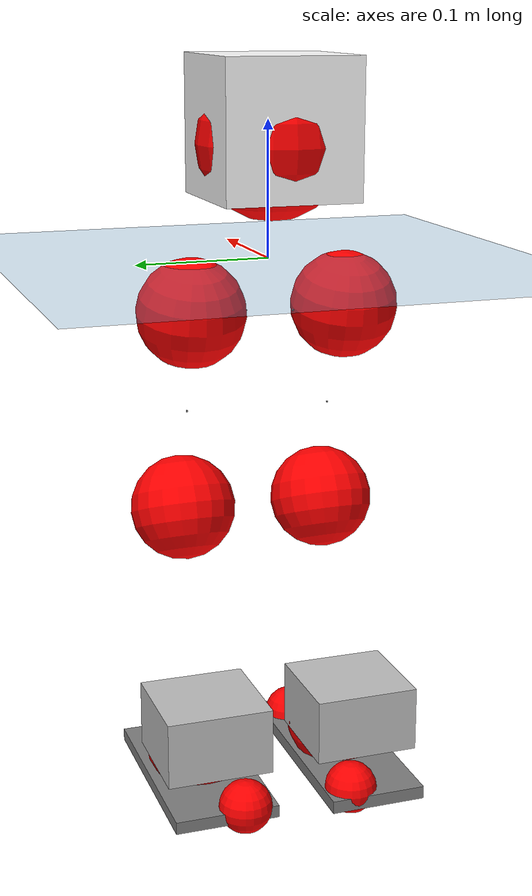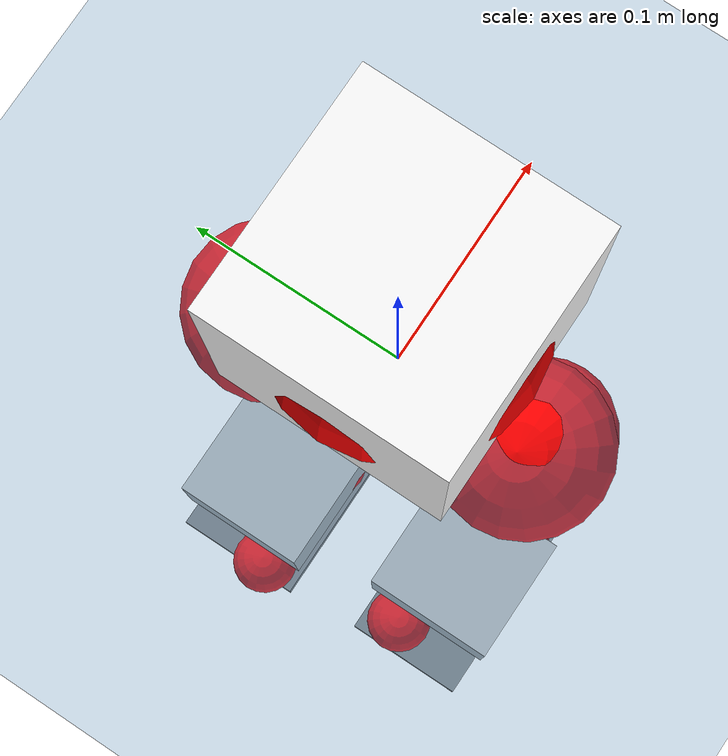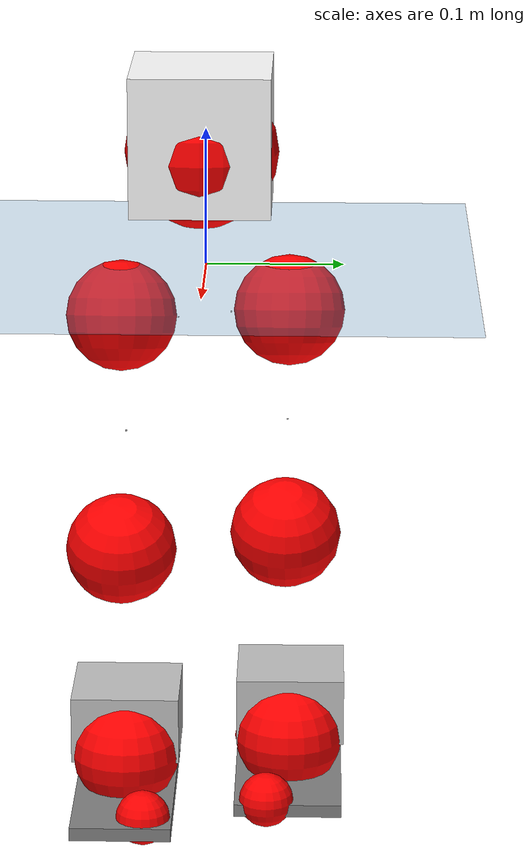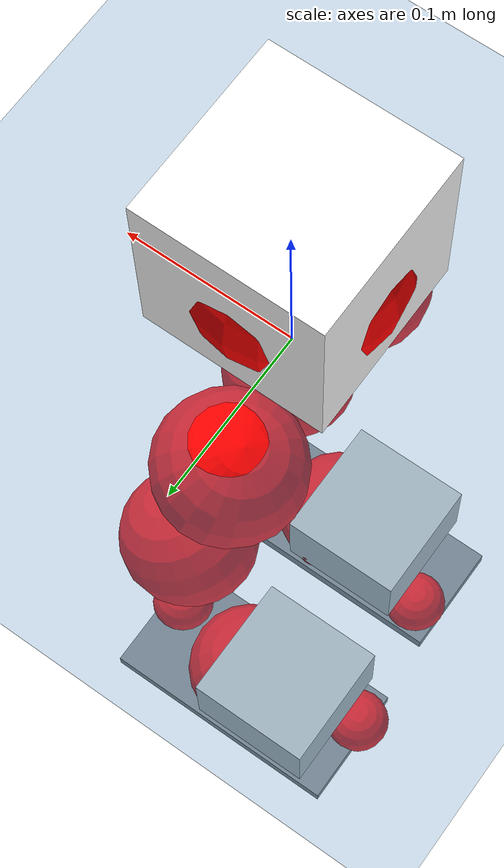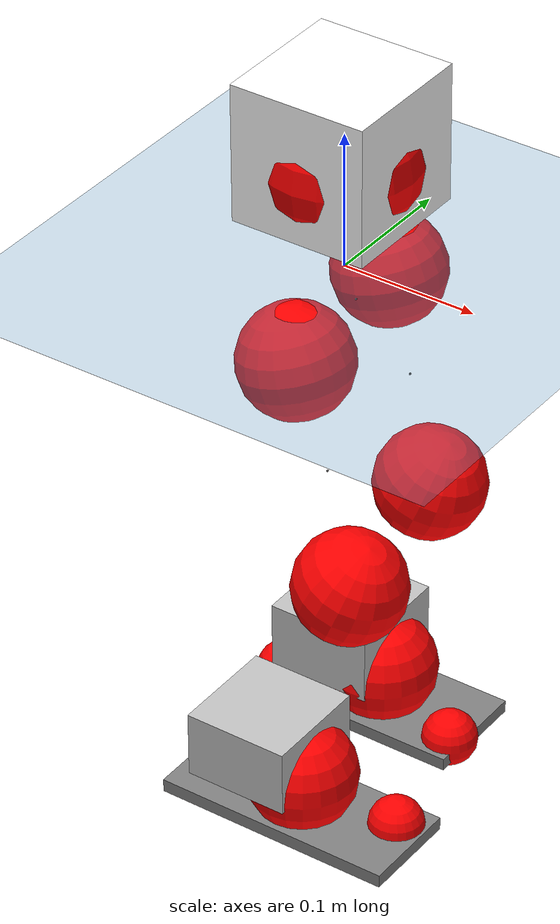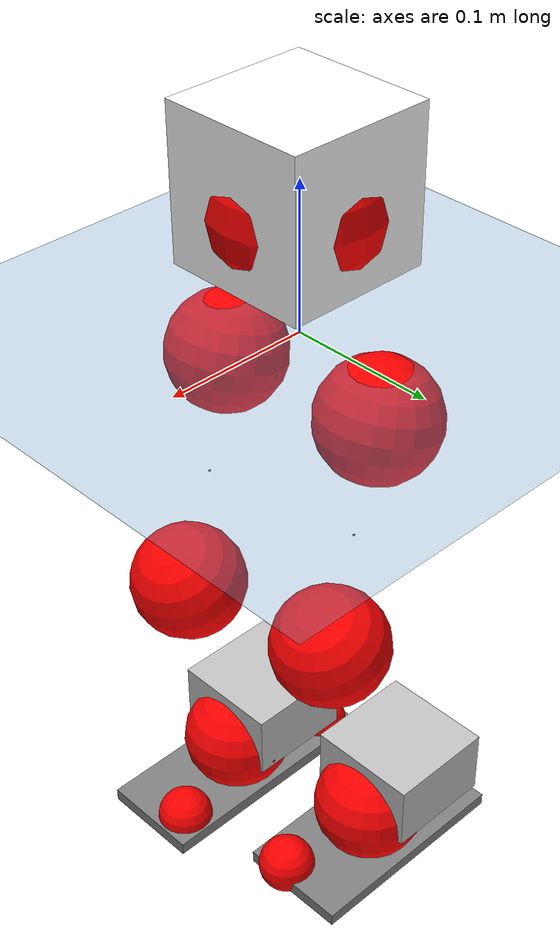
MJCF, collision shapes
<mujoco model="pi_12dof_release_v1">
  <compiler angle="radian" assetdir="assets" balanceinertia="true" inertiafromgeom="false"/>

  <option timestep="0.005" density="1.2" viscosity="2e-05"/>

  <size nkey="1"/>

  <visual>
    <quality shadowsize="8192"/>
    <map shadowclip="0.5"/>
  </visual>

  <default>
    <default class="/">
      <joint armature="0.01" damping="0.01" frictionloss="0.01"/>
      <geom contype="0" conaffinity="0" group="1" solref="-1000 -80"/>
      <site size="0.01 0.005 0.005" group="5"/>
      <general forcelimited="true" biastype="affine" gainprm="20" biasprm="0 -20 -0.5"/>
      <default class="foot">
        <geom size="0.0845 0.036 0.005" type="box" condim="6" group="4" priority="1" friction="0.9 0.2 0.2" solimp="0.015 1 0.005"/>
      </default>
      <default class="reward_collision_sphere">
        <geom group="5" rgba="1 0 0 1"/>
      </default>
    </default>
  </default>

  <asset>
    <texture type="skybox" colorspace="auto" name="//unnamed_texture_0" builtin="gradient" rgb1="0.95 0.95 0.95" rgb2="0.95 0.95 0.95" width="100" height="600"/>
    <texture type="2d" colorspace="auto" name="texplane" builtin="checker" rgb1="0.345 0.575 0.748" rgb2="0.345 0.575 0.748" markrgb="1 1 1" width="512" height="512"/>
    <material name="MatPlane" class="/" texture="texplane" texuniform="true" texrepeat="2 2" specular="0.9"/>
    <mesh name="baselink_1" class="/" file="baselink_1.STL"/>
    <mesh name="r_hip_pitch_link" class="/" file="r_hip_pitch_link.STL"/>
    <mesh name="r_hip_roll_link" class="/" file="r_hip_roll_link.STL"/>
    <mesh name="r_thigh_link" class="/" file="r_thigh_link.STL"/>
    <mesh name="r_calf_link" class="/" file="r_calf_link.STL"/>
    <mesh name="r_ankle_pitch_link" class="/" file="r_ankle_pitch_link.STL"/>
    <mesh name="r_ankle_roll_link" class="/" file="r_ankle_roll_link.STL"/>
    <mesh name="l_hip_pitch_link" class="/" file="l_hip_pitch_link.STL"/>
    <mesh name="l_hip_roll_link" class="/" file="l_hip_roll_link.STL"/>
    <mesh name="l_thigh_link" class="/" file="l_thigh_link.STL"/>
    <mesh name="l_calf_link" class="/" file="l_calf_link.STL"/>
    <mesh name="l_ankle_pitch_link" class="/" file="l_ankle_pitch_link.STL"/>
    <mesh name="l_ankle_roll_link" class="/" file="l_ankle_roll_link.STL"/>
  </asset>

  <worldbody>
    <geom name="floor" class="/" size="100 100 0.125" type="plane" group="0" material="MatPlane"/>
    <light name="toplight_shadow" class="/" pos="0 0 5" dir="0.0990148 0.0990148 -0.990148" type="directional" ambient="0.04 0.04 0.04" diffuse="0.55 0.55 0.55" specular="0.12 0.12 0.12"/>
    <light name="toplight_fill" class="/" pos="0 0 5" dir="0.0990148 0.0990148 -0.990148" type="directional" castshadow="false" ambient="0.04 0.04 0.04" diffuse="0.3 0.3 0.3" specular="0.08 0.08 0.08"/>
    <body name="trunk" pos="-0.000442841 -0.00275119 -0.000560648" quat="0.999999 0.00118196 -0.000224488 -0.000676332">
      <inertial pos="0.000142202 -0.00224685 0.0511478" quat="0.693625 0.0203009 0.014277 0.719909" mass="2.25679" diaginertia="0.0115614 0.00283502 0.0101942"/>
      <joint name="//unnamed_joint_0" type="free"/>
      <geom name="//unnamed_geom_1" class="/" type="mesh" density="0" rgba="1 1 1 1" mesh="baselink_1"/>
      <geom name="//unnamed_geom_2" class="/" size="0.0506172 0.0506172 0.0506172" pos="0 0 0.095571" type="box" rgba="1 1 1 1"/>
      <geom name="//unnamed_geom_3" class="reward_collision_sphere" size="0.0556789" pos="0 0 0.0836247"/>
      <site name="imu" class="/" pos="0.00514409 -0.00304267 -0.00298126" size="0.0101234"/>
      <camera name="track" class="/" pos="0 -1.59572 0" quat="0.707107 0.707107 0 0" mode="trackcom"/>
      <camera name="ego_camera" class="/" pos="0.0783397 0 0.215035" quat="-0.5 -0.5 0.5 0.5"/>
      <body name="r_hip_pitch_link" pos="0.00207182 -0.0174381 -0.0394627" quat="0.992174 -0.000203646 -0.124863 0.000386322">
        <inertial pos="0.00133158 -0.0475151 -0.00157443" quat="-0.0236782 0.706084 -0.0329511 0.706964" mass="0.382061" diaginertia="0.000135317 3.07592e-05 0.000201865"/>
        <joint name="r_hip_pitch_joint" class="/" pos="0 0 0" axis="0.00665008 -0.999972 -0.00329832" stiffness="0.00023162" range="-1.6947 1.29582" armature="0.0105315" damping="0.0232472" frictionloss="0.0112746"/>
        <geom name="//unnamed_geom_4" class="/" type="mesh" density="0" rgba="0.75294 0.75294 0.75294 1" mesh="r_hip_pitch_link"/>
        <geom name="//unnamed_geom_5" class="/" size="0.000506172 0.000506172 0.000506172" type="box" rgba="0.75294 0.75294 0.75294 1"/>
        <body name="r_hip_roll_link" pos="0.00309781 -0.0414732 0.00106257" quat="1 -0.000471678 0.000163884 0.000733392">
          <inertial pos="-0.00290572 0.000445898 -0.0731339" quat="0.705914 -0.0748609 -0.0881315 0.698795" mass="0.41727" diaginertia="0.000404962 9.27843e-05 0.000313785"/>
          <joint name="r_hip_roll_joint" class="/" pos="0 0 0" axis="-0.999942 -0.0069726 0.00817388" range="-0.121148 0.492745" armature="0.0116598" damping="0.0241777" frictionloss="0.0106395"/>
          <geom name="//unnamed_geom_6" class="/" type="mesh" density="0" rgba="0.75294 0.75294 0.75294 1" mesh="r_hip_roll_link"/>
          <geom name="//unnamed_geom_7" class="/" size="0.000506172 0.000506172 0.000506172" type="box" rgba="0.75294 0.75294 0.75294 1"/>
          <geom name="//unnamed_geom_8" class="reward_collision_sphere" size="0.0404937"/>
          <body name="r_thigh_link" pos="0.00111074 0.003982 -0.0841093" quat="1 0.000193776 0.000748885 -0.000298732">
            <inertial pos="-0.00200678 -0.00156062 -0.0596033" quat="0.738117 0.674653 -0.00452377 -0.00223122" mass="0.114294" diaginertia="0.000149752 3.04472e-05 0.000138005"/>
            <joint name="r_thigh_joint" class="/" pos="0 0 0" axis="-0.00504293 -0.00992147 -0.999938" range="-0.341521 0.553928" armature="0.0116123" damping="0.000315057" frictionloss="0.0111828"/>
            <geom name="//unnamed_geom_9" class="/" type="mesh" density="0" rgba="0.75294 0.75294 0.75294 1" mesh="r_thigh_link"/>
            <geom name="//unnamed_geom_10" class="/" size="0.000506172 0.000506172 0.000506172" type="box" rgba="0.75294 0.75294 0.75294 1"/>
            <body name="r_calf_link" pos="-0.00115024 -0.00315041 -0.0864581" quat="0.947686 -0.000109405 0.319205 7.23604e-05">
              <inertial pos="0.000525687 0.000824082 -0.0848103" quat="0.999967 0.00758395 0.00296924 -0.000629874" mass="0.834639" diaginertia="0.00424208 0.00113231 0.000431555"/>
              <joint name="r_calf_joint" class="/" pos="0 0 0" axis="-0.0033041 -0.999959 -0.00847756" range="-1.6956 0.665389" armature="0.0102851" damping="0" frictionloss="0.0113407"/>
              <geom name="//unnamed_geom_11" class="/" type="mesh" density="0" rgba="0.75294 0.75294 0.75294 1" mesh="r_calf_link"/>
              <geom name="//unnamed_geom_12" class="/" size="0.000506172 0.000506172 0.000506172" type="box" rgba="0.75294 0.75294 0.75294 1"/>
              <geom name="//unnamed_geom_13" class="reward_collision_sphere" size="0.0404937"/>
              <body name="r_ankle_pitch_link" pos="-0.00108745 -0.00059909 -0.16934" quat="0.980079 1.85e-05 -0.198609 -1.01311e-05">
                <inertial pos="0.00700792 0.00026212 0.00198983" quat="0.00491676 0.709475 -0.00486004 0.704696" mass="0.183976" diaginertia="0.000370667 7.1848e-05 0.000292089"/>
                <joint name="r_ankle_pitch_joint" class="/" pos="0 0 0" axis="-0.00184958 -0.999997 0.00130935" stiffness="0.00170932" range="-1.35255 0.4549" armature="0.0113639" damping="0.00716497" frictionloss="0.0114065"/>
                <geom name="//unnamed_geom_14" class="/" type="mesh" density="0" rgba="0.75294 0.75294 0.75294 1" mesh="r_ankle_pitch_link"/>
                <geom name="//unnamed_geom_15" class="/" size="0.0394814 0.0404937 0.0253086" type="box" rgba="0.75294 0.75294 0.75294 1"/>
                <body name="r_ankle_roll_link" pos="0.0796326 0.000238509 0.0022453" quat="1 -5.11929e-05 -0.000179412 7.36225e-05">
                  <inertial pos="-0.0276446 0.00288726 -0.0181448" quat="0.553945 0.430082 0.437071 0.563155" mass="0.550312" diaginertia="0.00141485 0.000352825 0.000681852"/>
                  <joint name="r_ankle_roll_joint" class="/" pos="0 0 0" axis="-0.999984 -0.00493937 -0.00265881" stiffness="0.00991529" range="-0.11677 0.207771" armature="0.0106441" damping="0.0228048" frictionloss="0.0104334"/>
                  <geom name="//unnamed_geom_16" class="/" type="mesh" density="0" rgba="0.75294 0.75294 0.75294 1" mesh="r_ankle_roll_link"/>
                  <geom name="//unnamed_geom_17" class="/" type="mesh" rgba="0.75294 0.75294 0.75294 1" mesh="r_ankle_roll_link"/>
                  <geom name="right_foot" class="foot" size="0.0908436 0.0374113 0.00497725" pos="-0.053271 0 -0.0525641"/>
                  <geom name="//unnamed_geom_19" class="reward_collision_sphere" size="0.0404937" pos="-0.0522265 0 -0.0238928"/>
                  <geom name="//unnamed_geom_20" class="reward_collision_sphere" size="0.0202469" pos="0.0156679 0.0159572 -0.0477855"/>
                  <geom name="//unnamed_geom_21" class="reward_collision_sphere" size="0.0202469" pos="-0.125344 0.0159572 -0.0477855"/>
                  <site name="right_foot" class="foot" pos="-0.053271 0 -0.0525641" size="0.0101234"/>
                </body>
              </body>
            </body>
          </body>
        </body>
      </body>
      <body name="l_hip_pitch_link" pos="-0.00275305 0.0209038 -0.0362991" quat="0.992207 0.000225841 -0.124597 0.000195731">
        <inertial pos="0.000215745 0.0430822 0.00258678" quat="-0.0393854 0.705552 0.030628 0.706899" mass="0.389548" diaginertia="0.000158188 3.25495e-05 0.000248371"/>
        <joint name="l_hip_pitch_joint" class="/" pos="0 0 0" axis="0.000119209 0.999998 0.00190875" stiffness="0.00981906" range="-1.27484 1.80624" armature="0.0102733" damping="0.00764659" frictionloss="0.00985071"/>
        <geom name="//unnamed_geom_22" class="/" type="mesh" density="0" rgba="0.75294 0.75294 0.75294 1" mesh="l_hip_pitch_link"/>
        <geom name="//unnamed_geom_23" class="/" size="0.000506172 0.000506172 0.000506172" type="box" rgba="0.75294 0.75294 0.75294 1"/>
        <body name="l_hip_roll_link" pos="-0.00207395 0.0425139 0.0014321" quat="0.999999 0.000703484 0.000648326 -0.000492629">
          <inertial pos="-0.00320786 0.00145145 -0.0721998" quat="0.700469 -0.0638682 -0.0697343 0.70739" mass="0.393904" diaginertia="0.000402859 9.2662e-05 0.000323243"/>
          <joint name="l_hip_roll_joint" class="/" pos="0 0 0" axis="-0.999928 0.00895411 -0.00793202" stiffness="0.00241854" range="-0.503887 0.130703" armature="0.0109987" damping="0.00647481" frictionloss="0.00890959"/>
          <geom name="//unnamed_geom_24" class="/" type="mesh" density="0" rgba="0.75294 0.75294 0.75294 1" mesh="l_hip_roll_link"/>
          <geom name="//unnamed_geom_25" class="/" size="0.000506172 0.000506172 0.000506172" type="box" rgba="0.75294 0.75294 0.75294 1"/>
          <geom name="//unnamed_geom_26" class="reward_collision_sphere" size="0.0404937"/>
          <body name="l_thigh_link" pos="-0.00185305 -0.00101528 -0.07982" quat="0.999999 -0.000800276 -0.000376542 0.000761622">
            <inertial pos="0.000613359 0.00144247 -0.0551822" quat="0.672941 0.739694 -0.00137598 -0.000881312" mass="0.114894" diaginertia="0.000148246 2.91966e-05 0.000134449"/>
            <joint name="l_thigh_joint" class="/" pos="0 0 0" axis="-0.00131181 0.000438023 -0.999999" stiffness="0.0088481" range="-0.58764 0.298576" armature="0.00880778" damping="0" frictionloss="0.0105001"/>
            <geom name="//unnamed_geom_27" class="/" type="mesh" density="0" rgba="0.75294 0.75294 0.75294 1" mesh="l_thigh_link"/>
            <geom name="//unnamed_geom_28" class="/" size="0.000506172 0.000506172 0.000506172" type="box" rgba="0.75294 0.75294 0.75294 1"/>
            <body name="l_calf_link" pos="-0.00249842 -0.00100883 -0.0834127" quat="0.947656 8.67015e-05 0.319294 0.000709591">
              <inertial pos="-0.000666884 0.00146393 -0.0834645" quat="0.99998 0.00103809 0.000693382 0.00624151" mass="0.824466" diaginertia="0.00427348 0.00110894 0.000420596"/>
              <joint name="l_calf_joint" class="/" pos="0 0 0" axis="-0.0104608 0.999944 0.0018173" range="-0.59656 1.63659" armature="0.00921771" damping="0.0115174" frictionloss="0.0102634"/>
              <geom name="//unnamed_geom_29" class="/" type="mesh" density="0" rgba="0.75294 0.75294 0.75294 1" mesh="l_calf_link"/>
              <geom name="//unnamed_geom_30" class="/" size="0.000506172 0.000506172 0.000506172" type="box" rgba="0.75294 0.75294 0.75294 1"/>
              <geom name="//unnamed_geom_31" class="reward_collision_sphere" size="0.0404937"/>
              <body name="l_ankle_pitch_link" pos="-0.00280027 0.00355054 -0.168973" quat="0.980107 0.000480734 -0.198467 0.000325643">
                <inertial pos="0.00571836 -0.00367803 0.00119654" quat="-0.00114818 0.708203 0.00665316 0.705977" mass="0.182892" diaginertia="0.000386165 7.11182e-05 0.000280546"/>
                <joint name="l_ankle_pitch_joint" class="/" pos="0 0 0" axis="0.00182664 0.99999 -0.00407094" stiffness="0.00617639" range="-0.479674 1.29769" armature="0.00894815" damping="0.022414" frictionloss="0.00879195"/>
                <geom name="//unnamed_geom_32" class="/" type="mesh" density="0" rgba="0.75294 0.75294 0.75294 1" mesh="l_ankle_pitch_link"/>
                <geom name="//unnamed_geom_33" class="/" size="0.0394814 0.0404937 0.0253086" type="box" rgba="0.75294 0.75294 0.75294 1"/>
                <body name="l_ankle_roll_link" pos="0.0804575 -0.00115672 0.00142749" quat="1 -6.43913e-05 -0.000232022 5.03223e-05">
                  <inertial pos="-0.0283649 -0.00115427 -0.0172783" quat="0.559842 0.430549 0.435483 0.558174" mass="0.554358" diaginertia="0.00140691 0.000340583 0.000695177"/>
                  <joint name="l_ankle_roll_joint" class="/" pos="0 0 0" axis="-0.999998 0.00135071 0.00150451" range="-0.114703 0.162711" armature="0.010595" damping="0" frictionloss="0.00955792"/>
                  <geom name="//unnamed_geom_34" class="/" type="mesh" density="0" rgba="0.75294 0.75294 0.75294 1" mesh="l_ankle_roll_link"/>
                  <geom name="//unnamed_geom_35" class="/" type="mesh" rgba="0.75294 0.75294 0.75294 1" mesh="l_ankle_roll_link"/>
                  <geom name="left_foot" class="foot" size="0.0795214 0.0399052 0.00472243" pos="-0.053271 0 -0.0525641"/>
                  <geom name="//unnamed_geom_37" class="reward_collision_sphere" size="0.0404937" pos="-0.0522265 0 -0.0238928"/>
                  <geom name="//unnamed_geom_38" class="reward_collision_sphere" size="0.0202469" pos="0.0156679 -0.0159572 -0.0477855"/>
                  <geom name="//unnamed_geom_39" class="reward_collision_sphere" size="0.0202469" pos="-0.125344 -0.0159572 -0.0477855"/>
                  <site name="left_foot" class="foot" pos="-0.053271 0 -0.0525641" size="0.0101234"/>
                </body>
              </body>
            </body>
          </body>
        </body>
      </body>
    </body>
  </worldbody>

  <contact>
    <pair class="/" geom1="floor" geom2="right_foot" name="//unnamed_contact_1"/>
    <pair class="/" geom1="floor" geom2="left_foot" name="//unnamed_contact_0"/>
  </contact>

  <actuator>
    <general name="r_hip_pitch_joint" class="/" joint="r_hip_pitch_joint" forcerange="-20.127 20.127" gainprm="19.3371" biasprm="0 -19.3371 -0.537629"/>
    <general name="r_hip_roll_joint" class="/" joint="r_hip_roll_joint" forcerange="-22.6794 22.6794" gainprm="19.3371" biasprm="0 -19.3371 -0.537629"/>
    <general name="r_thigh_joint" class="/" joint="r_thigh_joint" forcerange="-21.1887 21.1887" gainprm="19.3371" biasprm="0 -19.3371 -0.537629"/>
    <general name="r_calf_joint" class="/" joint="r_calf_joint" forcerange="-20.6615 20.6615" gainprm="19.3371" biasprm="0 -19.3371 -0.537629"/>
    <general name="r_ankle_pitch_joint" class="/" joint="r_ankle_pitch_joint" forcerange="-21.3192 21.3192" gainprm="19.3371" biasprm="0 -19.3371 -0.537629"/>
    <general name="r_ankle_roll_joint" class="/" joint="r_ankle_roll_joint" forcerange="-23.4714 23.4714" gainprm="19.3371" biasprm="0 -19.3371 -0.537629"/>
    <general name="l_hip_pitch_joint" class="/" joint="l_hip_pitch_joint" forcerange="-22.8877 22.8877" gainprm="19.3371" biasprm="0 -19.3371 -0.537629"/>
    <general name="l_hip_roll_joint" class="/" joint="l_hip_roll_joint" forcerange="-21.0754 21.0754" gainprm="19.3371" biasprm="0 -19.3371 -0.537629"/>
    <general name="l_thigh_joint" class="/" joint="l_thigh_joint" forcerange="-21.0075 21.0075" gainprm="19.3371" biasprm="0 -19.3371 -0.537629"/>
    <general name="l_calf_joint" class="/" joint="l_calf_joint" forcerange="-19.5406 19.5406" gainprm="19.3371" biasprm="0 -19.3371 -0.537629"/>
    <general name="l_ankle_pitch_joint" class="/" joint="l_ankle_pitch_joint" forcerange="-21.3967 21.3967" gainprm="19.3371" biasprm="0 -19.3371 -0.537629"/>
    <general name="l_ankle_roll_joint" class="/" joint="l_ankle_roll_joint" forcerange="-18.9723 18.9723" gainprm="19.3371" biasprm="0 -19.3371 -0.537629"/>
  </actuator>

  <sensor>
    <gyro site="imu" name="imu_angular_velocity"/>
    <velocimeter site="imu" name="imu_linear_velocity"/>
    <framelinvel objtype="site" objname="left_foot" name="left_foot_global_linear_velocity"/>
    <framelinvel objtype="site" objname="right_foot" name="right_foot_global_linear_velocity"/>
  </sensor>

  <keyframe>
    <key name="home" qpos="0 0 0.291 1 0 0 0 0.4 0 0 -0.8 0.4 0 -0.4 0 0 0.8 -0.4 0"/>
  </keyframe>
</mujoco>
